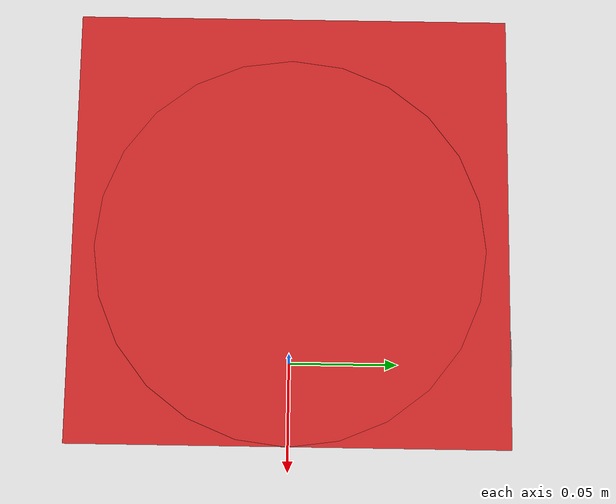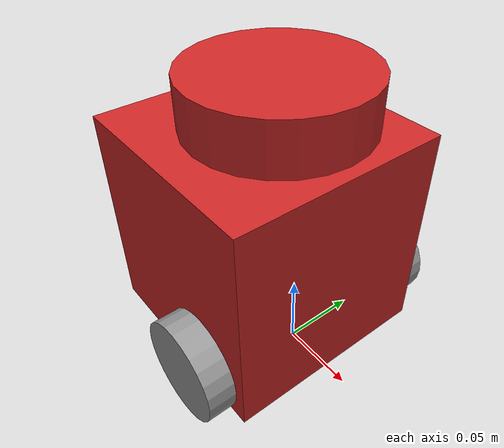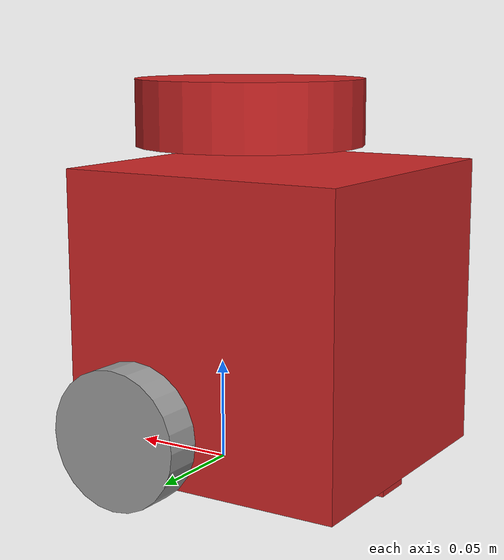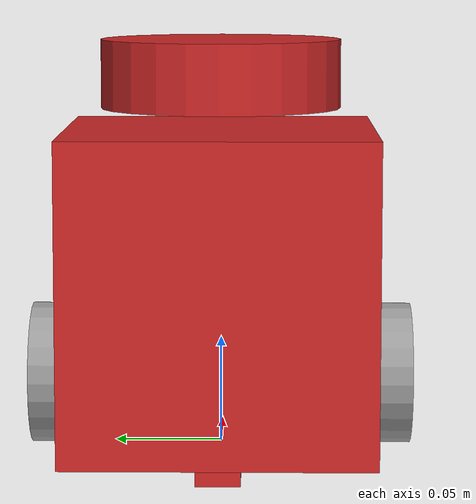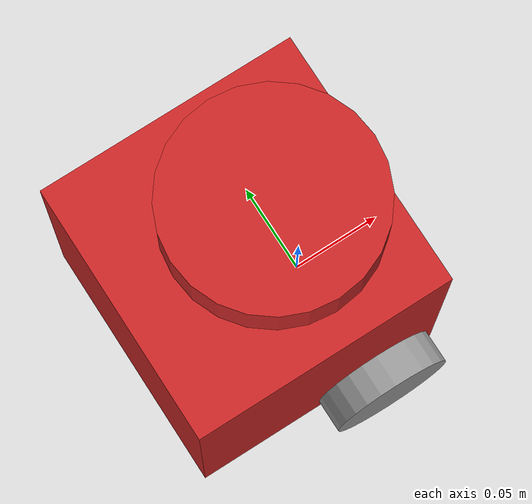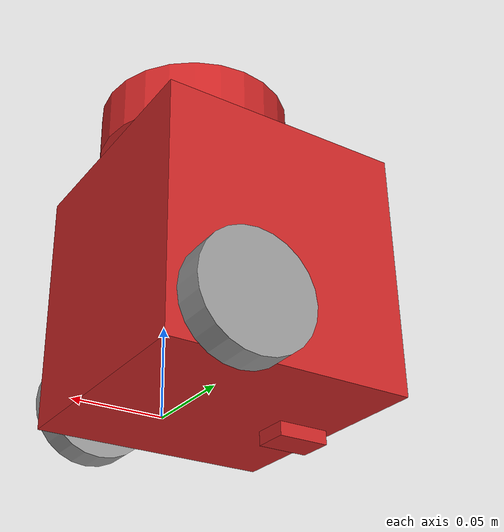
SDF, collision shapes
<sdf version='1.7'>
  <model name='turtlebot3'>
    <link name='base_footprint'>
      <inertial>
        <pose>-0.00429 0 0.030734 0 -0 0</pose>
        <mass>0.944735</mass>
        <inertia>
          <ixx>0.00717896</ixx>
          <ixy>-1.22941e-05</ixy>
          <ixz>0.00057674</ixz>
          <iyy>0.00721804</iyy>
          <iyz>-5.01209e-06</iyz>
          <izz>0.00413858</izz>
        </inertia>
      </inertial>
      <collision name='base_footprint_fixed_joint_lump__base_link_collision'>
        <pose>-0.032 0 0.08 0 -0 0</pose>
        <geometry>
          <box>
            <size>0.14 0.14 0.143</size>
          </box>
        </geometry>
        <surface>
          <contact>
            <ode/>
          </contact>
          <friction>
            <ode/>
          </friction>
        </surface>
      </collision>
      <collision name='base_footprint_fixed_joint_lump__caster_back_link_collision_1'>
        <pose>-0.081 1e-06 0.005 -1.57 0 0</pose>
        <geometry>
          <box>
            <size>0.03 0.009 0.02</size>
          </box>
        </geometry>
        <surface>
          <contact>
            <ode/>
          </contact>
          <friction>
            <ode/>
          </friction>
        </surface>
      </collision>
      <collision name='base_footprint_fixed_joint_lump__base_scan_collision_2'>
        <pose>-0.017 0 0.1755 0 -0 0</pose>
        <geometry>
          <cylinder>
            <length>0.0315</length>
            <radius>0.055</radius>
          </cylinder>
        </geometry>
        <surface>
          <contact>
            <ode/>
          </contact>
          <friction>
            <ode/>
          </friction>
        </surface>
      </collision>
      <visual name='base_footprint_fixed_joint_lump__base_link_visual'>
        <pose>-0.032 0 0.01 0 -0 0</pose>
        <geometry>
          <mesh>
            <scale>0.001 0.001 0.001</scale>
            <uri>model://turtlebot3_description/meshes/bases/burger_base.stl</uri>
          </mesh>
        </geometry>
        <material>
          <script>
            <name>Gazebo/Red</name>
            <uri>file://media/materials/scripts/gazebo.material</uri>
          </script>
        </material>
      </visual>
      <visual name='base_footprint_fixed_joint_lump__base_scan_visual_1'>
        <pose>-0.032 0 0.182 0 -0 0</pose>
        <geometry>
          <mesh>
            <scale>0.001 0.001 0.001</scale>
            <uri>model://turtlebot3_description/meshes/sensors/lds.stl</uri>
          </mesh>
        </geometry>
        <material>
          <script>
            <name>Gazebo/Blue</name>
            <uri>file://media/materials/scripts/gazebo.material</uri>
          </script>
        </material>
      </visual>
      <sensor name='rplidar_sensor' type='ray'>
        <always_on>1</always_on>
        <visualize>1</visualize>
        <update_rate>5</update_rate>
        <ray>
          <scan>
            <horizontal>
              <samples>360</samples>
              <resolution>1</resolution>
              <min_angle>0</min_angle>
              <max_angle>6.28</max_angle>
            </horizontal>
          </scan>
          <range>
            <min>0.12</min>
            <max>3.5</max>
            <resolution>0.015</resolution>
          </range>
          <noise>
            <type>gaussian</type>
            <mean>0</mean>
            <stddev>0.01</stddev>
          </noise>
        </ray>
        <plugin name='turtlebot3_laserscan' filename='libgazebo_ros_ray_sensor.so'>
          <ros>
            <remapping>~/out:=scan</remapping>
          </ros>
          <output_type>sensor_msgs/LaserScan</output_type>
          <frame_name>base_scan</frame_name>
        </plugin>
        <pose>-0.032 0 0.182 0 -0 0</pose>
      </sensor>
    </link>
    <joint name='wheel_left_joint' type='revolute'>
      <pose relative_to='base_footprint'>0 0.08 0.033 -1.57 0 0</pose>
      <parent>base_footprint</parent>
      <child>wheel_left_link</child>
      <axis>
        <xyz>0 0 1</xyz>
        <limit>
          <lower>-1e+16</lower>
          <upper>1e+16</upper>
        </limit>
        <dynamics>
          <spring_reference>0</spring_reference>
          <spring_stiffness>0</spring_stiffness>
        </dynamics>
      </axis>
    </joint>
    <link name='wheel_left_link'>
      <pose relative_to='wheel_left_joint'>0 0 0 0 -0 0</pose>
      <inertial>
        <pose>0 0 0 0 -0 0</pose>
        <mass>0.0284989</mass>
        <inertia>
          <ixx>1.11756e-05</ixx>
          <ixy>-4.23698e-11</ixy>
          <ixz>-5.93817e-09</ixz>
          <iyy>1.11924e-05</iyy>
          <iyz>-1.44001e-11</iyz>
          <izz>2.07126e-05</izz>
        </inertia>
      </inertial>
      <collision name='wheel_left_link_collision'>
        <pose>0 0 0 0 -0 0</pose>
        <geometry>
          <cylinder>
            <length>0.018</length>
            <radius>0.033</radius>
          </cylinder>
        </geometry>
        <surface>
          <contact>
            <ode/>
          </contact>
          <friction>
            <ode/>
          </friction>
        </surface>
      </collision>
      <visual name='wheel_left_link_visual'>
        <pose>0 0 0 1.57 -0 0</pose>
        <geometry>
          <mesh>
            <scale>0.001 0.001 0.001</scale>
            <uri>model://turtlebot3_description/meshes/wheels/left_tire.stl</uri>
          </mesh>
        </geometry>
        <material>
          <script>
            <name>Gazebo/Grey</name>
            <uri>file://media/materials/scripts/gazebo.material</uri>
          </script>
        </material>
      </visual>
    </link>
    <joint name='wheel_right_joint' type='revolute'>
      <pose relative_to='base_footprint'>0 -0.08 0.033 -1.57 0 0</pose>
      <parent>base_footprint</parent>
      <child>wheel_right_link</child>
      <axis>
        <xyz>0 0 1</xyz>
        <limit>
          <lower>-1e+16</lower>
          <upper>1e+16</upper>
        </limit>
        <dynamics>
          <spring_reference>0</spring_reference>
          <spring_stiffness>0</spring_stiffness>
        </dynamics>
      </axis>
    </joint>
    <link name='wheel_right_link'>
      <pose relative_to='wheel_right_joint'>0 0 0 0 -0 0</pose>
      <inertial>
        <pose>0 0 0 0 -0 0</pose>
        <mass>0.0284989</mass>
        <inertia>
          <ixx>1.11756e-05</ixx>
          <ixy>-4.23698e-11</ixy>
          <ixz>-5.93817e-09</ixz>
          <iyy>1.11924e-05</iyy>
          <iyz>-1.44001e-11</iyz>
          <izz>2.07126e-05</izz>
        </inertia>
      </inertial>
      <collision name='wheel_right_link_collision'>
        <pose>0 0 0 0 -0 0</pose>
        <geometry>
          <cylinder>
            <length>0.018</length>
            <radius>0.033</radius>
          </cylinder>
        </geometry>
        <surface>
          <contact>
            <ode/>
          </contact>
          <friction>
            <ode/>
          </friction>
        </surface>
      </collision>
      <visual name='wheel_right_link_visual'>
        <pose>0 0 0 1.57 -0 0</pose>
        <geometry>
          <mesh>
            <scale>0.001 0.001 0.001</scale>
            <uri>model://turtlebot3_description/meshes/wheels/right_tire.stl</uri>
          </mesh>
        </geometry>
        <material>
          <script>
            <name>Gazebo/Grey</name>
            <uri>file://media/materials/scripts/gazebo.material</uri>
          </script>
        </material>
      </visual>
    </link>
    <static>0</static>
    <plugin name='turtlebot3_diff_drive' filename='libgazebo_ros_diff_drive.so'>
      <update_rate>30</update_rate>
      <left_joint>wheel_left_joint</left_joint>
      <right_joint>wheel_right_joint</right_joint>
      <wheel_separation>0.160</wheel_separation>
      <wheel_diameter>0.066</wheel_diameter>
      <max_wheel_torque>20</max_wheel_torque>
      <max_wheel_acceleration>1.0</max_wheel_acceleration>
      <command_topic>cmd_vel</command_topic>
      <publish_odom>1</publish_odom>
      <publish_odom_tf>0</publish_odom_tf>
      <publish_wheel_tf>0</publish_wheel_tf>
      <odometry_topic>odom</odometry_topic>
      <odometry_frame>odom</odometry_frame>
      <robot_base_frame>base_footprint</robot_base_frame>
    </plugin>
    <plugin name='turtlebot3_joint_state' filename='libgazebo_ros_joint_state_publisher.so'>
      <ros>
        <remapping>~/out:=joint_states</remapping>
      </ros>
      <update_rate>30</update_rate>
      <joint_name>wheel_left_joint</joint_name>
      <joint_name>wheel_right_joint</joint_name>
    </plugin>
  </model>
</sdf>
